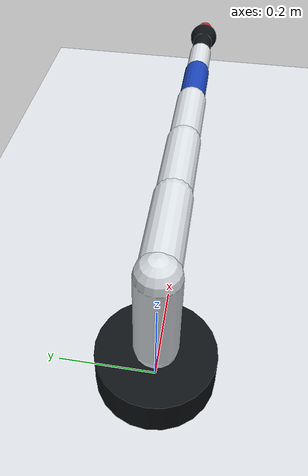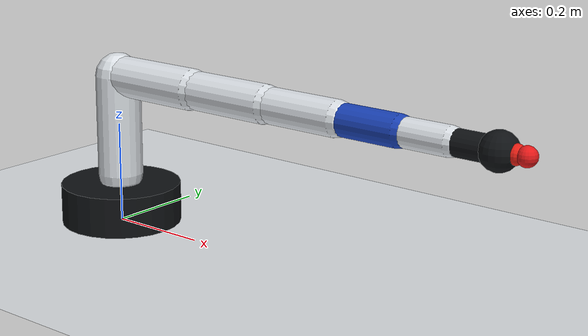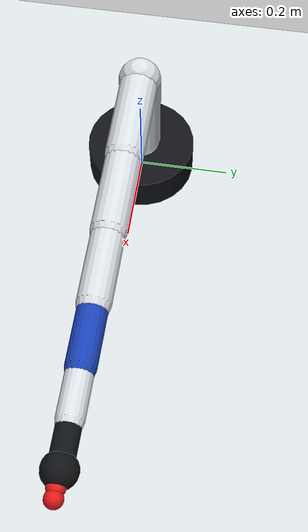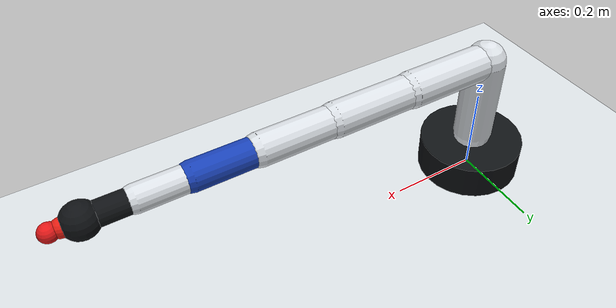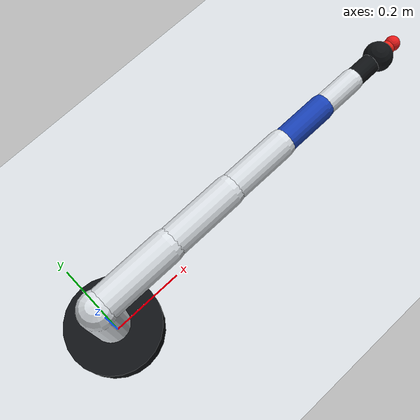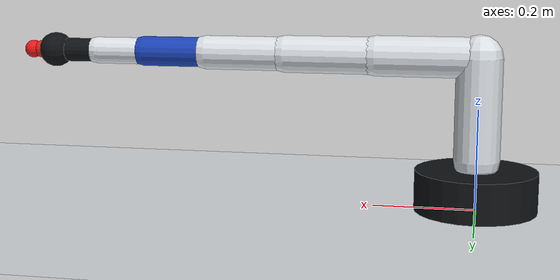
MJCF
<mujoco model="franka_panda_simplified">
  <compiler angle="radian" coordinate="local" inertiafromgeom="true"/>
  <option timestep="0.004" gravity="0 0 -9.81" integrator="implicitfast"/>

  <visual>
    <global azimuth="140" elevation="-20"/>
    <headlight ambient="0.35 0.35 0.35" diffuse="0.7 0.7 0.7" specular="0.2 0.2 0.2"/>
  </visual>

  <asset>
    <texture name="grid" type="2d" builtin="checker" rgb1="0.92 0.92 0.92" rgb2="0.78 0.82 0.85" width="300" height="300"/>
    <material name="floor_mat" texture="grid" texrepeat="2 2" reflectance="0.15"/>
    <material name="white" rgba="0.86 0.88 0.90 1"/>
    <material name="black" rgba="0.06 0.07 0.08 1"/>
    <material name="blue" rgba="0.1 0.26 0.72 1"/>
    <material name="ee_red" rgba="0.9 0.12 0.08 1"/>
  </asset>

  <default>
    <joint armature="0.02" damping="2.0" limited="true"/>
    <geom contype="1" conaffinity="1" density="650" friction="0.8 0.1 0.1"/>
    <position ctrllimited="true" kp="180" kv="25" forcerange="-90 90"/>
  </default>

  <worldbody>
    <light name="key" pos="0 -3 4" dir="0 0 -1" directional="true"/>
    <geom name="floor" type="plane" size="1.8 1.8 0.05" material="floor_mat"/>

    <body name="panda_base" pos="0 0 0.04">
      <geom name="base" type="cylinder" size="0.12 0.04" material="black"/>

      <body name="panda_link1" pos="0 0 0.06">
        <joint name="panda_joint1" type="hinge" axis="0 0 1" range="-2.8973 2.8973"/>
        <geom type="capsule" fromto="0 0 0 0 0 0.20" size="0.045" material="white"/>

        <body name="panda_link2" pos="0 0 0.20">
          <joint name="panda_joint2" type="hinge" axis="0 1 0" range="-1.7628 1.7628"/>
          <geom type="capsule" fromto="0 0 0 0.20 0 0" size="0.04" material="white"/>

          <body name="panda_link3" pos="0.20 0 0">
            <joint name="panda_joint3" type="hinge" axis="0 0 1" range="-2.8973 2.8973"/>
            <geom type="capsule" fromto="0 0 0 0.18 0 0" size="0.037" material="white"/>

            <body name="panda_link4" pos="0.18 0 0">
              <joint name="panda_joint4" type="hinge" axis="0 1 0" range="-3.0718 -0.0698"/>
              <geom type="capsule" fromto="0 0 0 0.16 0 0" size="0.034" material="white"/>

              <body name="panda_link5" pos="0.16 0 0">
                <joint name="panda_joint5" type="hinge" axis="1 0 0" range="-2.8973 2.8973"/>
                <geom type="capsule" fromto="0 0 0 0.13 0 0" size="0.03" material="blue"/>

                <body name="panda_link6" pos="0.13 0 0">
                  <joint name="panda_joint6" type="hinge" axis="0 1 0" range="-0.0175 3.7525"/>
                  <geom type="capsule" fromto="0 0 0 0.10 0 0" size="0.027" material="white"/>

                  <body name="panda_link7" pos="0.10 0 0">
                    <joint name="panda_joint7" type="hinge" axis="1 0 0" range="-2.8973 2.8973"/>
                    <geom type="capsule" fromto="0 0 0 0.09 0 0" size="0.024" material="black"/>
                    <body name="panda_hand" pos="0.09 0 0">
                      <geom type="sphere" size="0.035" material="black"/>
                      <geom type="sphere" pos="0.03 0 0" size="0.018" material="ee_red"/>
                      <site name="ee_site" pos="0.05 0 0" size="0.018" rgba="0.9 0.1 0.1 1"/>
                      <camera name="track" pos="0.95 -1.25 0.85" xyaxes="0.80 0.60 0.00 -0.30 0.40 0.86"/>
                    </body>
                  </body>
                </body>
              </body>
            </body>
          </body>
        </body>
      </body>
    </body>
  </worldbody>

  <actuator>
    <position name="act1" joint="panda_joint1" ctrlrange="-2.8973 2.8973"/>
    <position name="act2" joint="panda_joint2" ctrlrange="-1.7628 1.7628"/>
    <position name="act3" joint="panda_joint3" ctrlrange="-2.8973 2.8973"/>
    <position name="act4" joint="panda_joint4" ctrlrange="-3.0718 -0.0698"/>
    <position name="act5" joint="panda_joint5" ctrlrange="-2.8973 2.8973"/>
    <position name="act6" joint="panda_joint6" ctrlrange="-0.0175 3.7525"/>
    <position name="act7" joint="panda_joint7" ctrlrange="-2.8973 2.8973"/>
  </actuator>
</mujoco>
